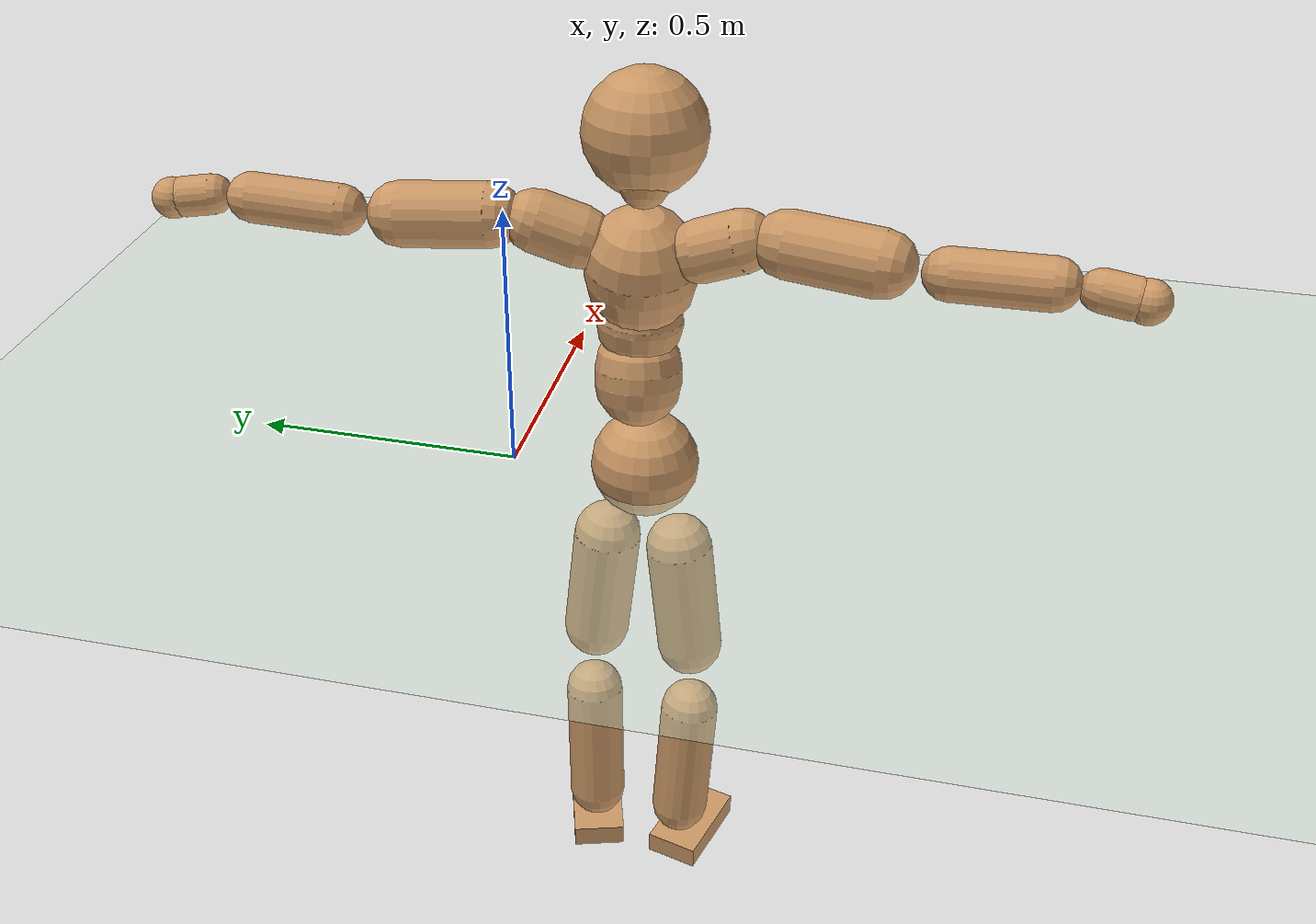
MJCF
<mujoco model="humanoid">
  <compiler coordinate="local"/>
  <default>
    <joint damping="0.0" armature="0.01" stiffness="0.0" limited="true"/>
    <geom conaffinity="1" condim="3" contype="7" margin="0.001" rgba="0.8 0.6 .4 1"/>
  </default>
  <asset>
    <texture type="skybox" builtin="gradient" rgb1=".4 .5 .6" rgb2="0 0 0" width="100" height="100"/>
    <texture builtin="flat" height="1278" mark="cross" markrgb="1 1 1" name="texgeom" random="0.01" rgb1="0.8 0.6 0.4" rgb2="0.8 0.6 0.4" type="cube" width="127"/>
    <texture builtin="checker" height="100" name="texplane" rgb1="0 0 0" rgb2="0.8 0.8 0.8" type="2d" width="100"/>
    <material name="MatPlane" reflectance="0.5" shininess="1" specular="1" texrepeat="60 60" texture="texplane"/>
    <material name="geom" texture="texgeom" texuniform="true"/>
  </asset>
  <worldbody>
    <light cutoff="100" diffuse="1 1 1" dir="-0 0 -1.3" directional="true" exponent="1" pos="0 0 1.3" specular=".1 .1 .1"/>
    <geom conaffinity="1" condim="3" name="floor" pos="0 0 0" rgba="0.8 0.9 0.8 1" size="100 100 .2" type="plane" material="MatPlane"/>
    <body name="Pelvis" pos="-0.0018 -0.2515 0.0301">
      <freejoint name="Pelvis"/>
      <geom type="sphere" contype="1" conaffinity="1" density="500" size="0.0991" pos="0.0000 0.0000 0.0000" name="Pelvis"/>
      <body name="L_Hip" pos="-0.0169 0.0598 -0.0839">
        <joint name="L_Hip_x" type="hinge" pos="0 0 0" axis="1 0 0" stiffness="800" damping="80" armature="0.02" range="-180.0000 180.0000"/>
        <joint name="L_Hip_y" type="hinge" pos="0 0 0" axis="0 1 0" stiffness="800" damping="80" armature="0.02" range="-180.0000 180.0000"/>
        <joint name="L_Hip_z" type="hinge" pos="0 0 0" axis="0 0 1" stiffness="800" damping="80" armature="0.02" range="-180.0000 180.0000"/>
        <geom type="capsule" contype="1" conaffinity="1" density="500" fromto="0.0016 0.0084 -0.0764 0.0062 0.0336 -0.3055" size="0.0626" name="L_Hip"/>
        <body name="L_Knee" pos="0.0078 0.042 -0.3819">
          <joint name="L_Knee_x" type="hinge" pos="0 0 0" axis="1 0 0" stiffness="800" damping="80" armature="0.02" range="-180.0000 180.0000"/>
          <joint name="L_Knee_y" type="hinge" pos="0 0 0" axis="0 1 0" stiffness="800" damping="80" armature="0.02" range="-180.0000 180.0000"/>
          <joint name="L_Knee_z" type="hinge" pos="0 0 0" axis="0 0 1" stiffness="800" damping="80" armature="0.02" range="-180.0000 180.0000"/>
          <geom type="capsule" contype="1" conaffinity="1" density="500" fromto="-0.0077 -0.0031 -0.0848 -0.0307 -0.0123 -0.3391" size="0.0561" name="L_Knee"/>
          <body name="L_Ankle" pos="-0.0384 -0.0154 -0.4239">
            <joint name="L_Ankle_x" type="hinge" pos="0 0 0" axis="1 0 0" stiffness="800" damping="80" armature="0.02" range="-180.0000 180.0000"/>
            <joint name="L_Ankle_y" type="hinge" pos="0 0 0" axis="0 1 0" stiffness="800" damping="80" armature="0.02" range="-180.0000 180.0000"/>
            <joint name="L_Ankle_z" type="hinge" pos="0 0 0" axis="0 0 1" stiffness="800" damping="80" armature="0.02" range="-180.0000 180.0000"/>
            <geom type="box" contype="1" conaffinity="1" density="500" pos="0.0619 0.0194 -0.0301" size="0.0897 0.0515 0.0224" quat="0.9885 0.0000 0.0000 0.1515" name="L_Ankle"/>
            <body name="L_Toe" pos="0.1237 0.0388 -0.0601">
              <joint name="L_Toe_x" type="hinge" pos="0 0 0" axis="1 0 0" stiffness="500" damping="50" armature="0.02" range="-180.0000 180.0000"/>
              <joint name="L_Toe_y" type="hinge" pos="0 0 0" axis="0 1 0" stiffness="500" damping="50" armature="0.02" range="-180.0000 180.0000"/>
              <joint name="L_Toe_z" type="hinge" pos="0 0 0" axis="0 0 1" stiffness="500" damping="50" armature="0.02" range="-180.0000 180.0000"/>
              <geom type="box" contype="1" conaffinity="1" density="500" pos="0.0000 0.0000 0.0290" size="0.0011 0.0025 0.0011" quat="0.9877 0.0000 0.0000 0.1564" name="L_Toe"/>
            </body>
          </body>
        </body>
      </body>
      <body name="R_Hip" pos="-0.0129 -0.0615 -0.0921">
        <joint name="R_Hip_x" type="hinge" pos="0 0 0" axis="1 0 0" stiffness="800" damping="80" armature="0.02" range="-180.0000 180.0000"/>
        <joint name="R_Hip_y" type="hinge" pos="0 0 0" axis="0 1 0" stiffness="800" damping="80" armature="0.02" range="-180.0000 180.0000"/>
        <joint name="R_Hip_z" type="hinge" pos="0 0 0" axis="0 0 1" stiffness="800" damping="80" armature="0.02" range="-180.0000 180.0000"/>
        <geom type="capsule" contype="1" conaffinity="1" density="500" fromto="-0.0009 -0.0084 -0.0760 -0.0035 -0.0337 -0.3041" size="0.0621" name="R_Hip"/>
        <body name="R_Knee" pos="-0.0044 -0.0422 -0.3801">
          <joint name="R_Knee_x" type="hinge" pos="0 0 0" axis="1 0 0" stiffness="800" damping="80" armature="0.02" range="-180.0000 180.0000"/>
          <joint name="R_Knee_y" type="hinge" pos="0 0 0" axis="0 1 0" stiffness="800" damping="80" armature="0.02" range="-180.0000 180.0000"/>
          <joint name="R_Knee_z" type="hinge" pos="0 0 0" axis="0 0 1" stiffness="800" damping="80" armature="0.02" range="-180.0000 180.0000"/>
          <geom type="capsule" contype="1" conaffinity="1" density="500" fromto="-0.0071 0.0039 -0.0835 -0.0282 0.0157 -0.3340" size="0.0562" name="R_Knee"/>
          <body name="R_Ankle" pos="-0.0353 0.0196 -0.4175">
            <joint name="R_Ankle_x" type="hinge" pos="0 0 0" axis="1 0 0" stiffness="800" damping="80" armature="0.02" range="-180.0000 180.0000"/>
            <joint name="R_Ankle_y" type="hinge" pos="0 0 0" axis="0 1 0" stiffness="800" damping="80" armature="0.02" range="-180.0000 180.0000"/>
            <joint name="R_Ankle_z" type="hinge" pos="0 0 0" axis="0 0 1" stiffness="800" damping="80" armature="0.02" range="-180.0000 180.0000"/>
            <geom type="box" contype="1" conaffinity="1" density="500" pos="0.0659 -0.0172 -0.0310" size="0.0914 0.0516 0.0223" quat="0.9918 0.0000 0.0000 -0.1276" name="R_Ankle"/>
            <body name="R_Toe" pos="0.1318 -0.0345 -0.062">
              <joint name="R_Toe_x" type="hinge" pos="0 0 0" axis="1 0 0" stiffness="500" damping="50" armature="0.02" range="-180.0000 180.0000"/>
              <joint name="R_Toe_y" type="hinge" pos="0 0 0" axis="0 1 0" stiffness="500" damping="50" armature="0.02" range="-180.0000 180.0000"/>
              <joint name="R_Toe_z" type="hinge" pos="0 0 0" axis="0 0 1" stiffness="500" damping="50" armature="0.02" range="-180.0000 180.0000"/>
              <geom type="box" contype="1" conaffinity="1" density="500" pos="0.0000 0.0000 0.0308" size="0.0011 0.0026 0.0011" quat="0.9929 0.0000 0.0000 -0.1188" name="R_Toe"/>
            </body>
          </body>
        </body>
      </body>
      <body name="Torso" pos="-0.0393 0.0043 0.1277">
        <joint name="Torso_x" type="hinge" pos="0 0 0" axis="1 0 0" stiffness="1000" damping="100" armature="0.02" range="-180.0000 180.0000"/>
        <joint name="Torso_y" type="hinge" pos="0 0 0" axis="0 1 0" stiffness="1000" damping="100" armature="0.02" range="-180.0000 180.0000"/>
        <joint name="Torso_z" type="hinge" pos="0 0 0" axis="0 0 1" stiffness="1000" damping="100" armature="0.02" range="-180.0000 180.0000"/>
        <geom type="capsule" contype="1" conaffinity="1" density="500" fromto="0.0167 0.0029 0.0852 0.0112 0.0019 0.0568" size="0.077283" name="Torso"/>
        <body name="Spine" pos="0.0279 0.0048 0.1421">
          <joint name="Spine_x" type="hinge" pos="0 0 0" axis="1 0 0" stiffness="1000" damping="100" armature="0.02" range="-180.0000 180.0000"/>
          <joint name="Spine_y" type="hinge" pos="0 0 0" axis="0 1 0" stiffness="1000" damping="100" armature="0.02" range="-180.0000 180.0000"/>
          <joint name="Spine_z" type="hinge" pos="0 0 0" axis="0 0 1" stiffness="1000" damping="100" armature="0.02" range="-180.0000 180.0000"/>
          <geom type="capsule" contype="1" conaffinity="1" density="500" fromto="0.0022 -0.0015 0.0349 0.0014 -0.0010 0.0232" size="0.075981" name="Spine"/>
          <body name="Chest" pos="0.0036 -0.0025 0.0581">
            <joint name="Chest_x" type="hinge" pos="0 0 0" axis="1 0 0" stiffness="1000" damping="100" armature="0.02" range="-180.0000 180.0000"/>
            <joint name="Chest_y" type="hinge" pos="0 0 0" axis="0 1 0" stiffness="1000" damping="100" armature="0.02" range="-180.0000 180.0000"/>
            <joint name="Chest_z" type="hinge" pos="0 0 0" axis="0 0 1" stiffness="1000" damping="100" armature="0.02" range="-180.0000 180.0000"/>
            <geom type="capsule" contype="1" conaffinity="1" density="500" fromto="-0.0170 -0.0051 0.0904 -0.0114 -0.0034 0.0603" size="0.096999" name="Chest"/>
            <body name="Neck" pos="-0.0394 -0.0137 0.2189">
              <joint name="Neck_x" type="hinge" pos="0 0 0" axis="1 0 0" stiffness="500" damping="50" armature="0.02" range="-180.0000 180.0000"/>
              <joint name="Neck_y" type="hinge" pos="0 0 0" axis="0 1 0" stiffness="500" damping="50" armature="0.02" range="-180.0000 180.0000"/>
              <joint name="Neck_z" type="hinge" pos="0 0 0" axis="0 0 1" stiffness="500" damping="50" armature="0.02" range="-180.0000 180.0000"/>
              <geom type="capsule" contype="1" conaffinity="1" density="500" fromto="0.0099 0.0019 0.0178 0.0395 0.0078 0.0711" size="0.043152" name="Neck"/>
              <body name="Head" pos="0.0494 0.0097 0.0889">
                <joint name="Head_x" type="hinge" pos="0 0 0" axis="1 0 0" stiffness="500" damping="50" armature="0.02" range="-180.0000 180.0000"/>
                <joint name="Head_y" type="hinge" pos="0 0 0" axis="0 1 0" stiffness="500" damping="50" armature="0.02" range="-180.0000 180.0000"/>
                <joint name="Head_z" type="hinge" pos="0 0 0" axis="0 0 1" stiffness="500" damping="50" armature="0.02" range="-180.0000 180.0000"/>
                <geom type="sphere" contype="1" conaffinity="1" density="500" size="0.1060" pos="0.0000 0.0000 0.0000" name="Head"/>
              </body>
            </body>
            <body name="L_Thorax" pos="-0.0204 0.0729 0.1173">
              <joint name="L_Thorax_x" type="hinge" pos="0 0 0" axis="1 0 0" stiffness="500" damping="50" armature="0.02" range="-180.0000 180.0000"/>
              <joint name="L_Thorax_y" type="hinge" pos="0 0 0" axis="0 1 0" stiffness="500" damping="50" armature="0.02" range="-180.0000 180.0000"/>
              <joint name="L_Thorax_z" type="hinge" pos="0 0 0" axis="0 0 1" stiffness="500" damping="50" armature="0.02" range="-180.0000 180.0000"/>
              <geom type="capsule" contype="1" conaffinity="1" density="500" fromto="-0.0039 0.0251 0.0090 -0.0157 0.1003 0.0360" size="0.0542" name="L_Thorax"/>
              <body name="L_Shoulder" pos="-0.0196 0.1254 0.0449">
                <joint name="L_Shoulder_x" type="hinge" pos="0 0 0" axis="1 0 0" stiffness="500" damping="50" armature="0.02" range="-720.0000 720.0000"/>
                <joint name="L_Shoulder_y" type="hinge" pos="0 0 0" axis="0 1 0" stiffness="500" damping="50" armature="0.02" range="-720.0000 720.0000"/>
                <joint name="L_Shoulder_z" type="hinge" pos="0 0 0" axis="0 0 1" stiffness="500" damping="50" armature="0.02" range="-720.0000 720.0000"/>
                <geom type="capsule" contype="1" conaffinity="1" density="500" fromto="-0.0046 0.0509 -0.0029 -0.0183 0.2035 -0.0118" size="0.0565" name="L_Shoulder"/>
                <body name="L_Elbow" pos="-0.0229 0.2543 -0.0147">
                  <joint name="L_Elbow_x" type="hinge" pos="0 0 0" axis="1 0 0" stiffness="500" damping="50" armature="0.02" range="-720.0000 720.0000"/>
                  <joint name="L_Elbow_y" type="hinge" pos="0 0 0" axis="0 1 0" stiffness="500" damping="50" armature="0.02" range="-720.0000 720.0000"/>
                  <joint name="L_Elbow_z" type="hinge" pos="0 0 0" axis="0 0 1" stiffness="500" damping="50" armature="0.02" range="-720.0000 720.0000"/>
                  <geom type="capsule" contype="1" conaffinity="1" density="500" fromto="-0.0014 0.0530 0.0025 -0.0055 0.2121 0.0099" size="0.0437" name="L_Elbow"/>
                  <body name="L_Wrist" pos="-0.0069 0.2651 0.0124">
                    <joint name="L_Wrist_x" type="hinge" pos="0 0 0" axis="1 0 0" stiffness="300" damping="30" armature="0.02" range="-180.0000 180.0000"/>
                    <joint name="L_Wrist_y" type="hinge" pos="0 0 0" axis="0 1 0" stiffness="300" damping="30" armature="0.02" range="-180.0000 180.0000"/>
                    <joint name="L_Wrist_z" type="hinge" pos="0 0 0" axis="0 0 1" stiffness="300" damping="30" armature="0.02" range="-180.0000 180.0000"/>
                    <geom type="capsule" contype="1" conaffinity="1" density="500" fromto="-0.0031 0.0175 -0.0021 -0.0125 0.0699 -0.0085" size="0.0346" name="L_Wrist"/>
                    <body name="L_Hand" pos="-0.0156 0.0874 -0.0107">
                      <joint name="L_Hand_x" type="hinge" pos="0 0 0" axis="1 0 0" stiffness="300" damping="30" armature="0.02" range="-180.0000 180.0000"/>
                      <joint name="L_Hand_y" type="hinge" pos="0 0 0" axis="0 1 0" stiffness="300" damping="30" armature="0.02" range="-180.0000 180.0000"/>
                      <joint name="L_Hand_z" type="hinge" pos="0 0 0" axis="0 0 1" stiffness="300" damping="30" armature="0.02" range="-180.0000 180.0000"/>
                      <geom type="sphere" contype="1" conaffinity="1" density="500" size="0.0359" pos="0.0000 0.0000 0.0000" name="L_Hand"/>
                    </body>
                  </body>
                </body>
              </body>
            </body>
            <body name="R_Thorax" pos="-0.0253 -0.0845 0.1158">
              <joint name="R_Thorax_x" type="hinge" pos="0 0 0" axis="1 0 0" stiffness="500" damping="50" armature="0.02" range="-180.0000 180.0000"/>
              <joint name="R_Thorax_y" type="hinge" pos="0 0 0" axis="0 1 0" stiffness="500" damping="50" armature="0.02" range="-180.0000 180.0000"/>
              <joint name="R_Thorax_z" type="hinge" pos="0 0 0" axis="0 0 1" stiffness="500" damping="50" armature="0.02" range="-180.0000 180.0000"/>
              <geom type="capsule" contype="1" conaffinity="1" density="500" fromto="-0.0018 -0.0231 0.0094 -0.0071 -0.0926 0.0375" size="0.0543" name="R_Thorax"/>
              <body name="R_Shoulder" pos="-0.0089 -0.1157 0.0468">
                <joint name="R_Shoulder_x" type="hinge" pos="0 0 0" axis="1 0 0" stiffness="500" damping="50" armature="0.02" range="-720.0000 720.0000"/>
                <joint name="R_Shoulder_y" type="hinge" pos="0 0 0" axis="0 1 0" stiffness="500" damping="50" armature="0.02" range="-720.0000 720.0000"/>
                <joint name="R_Shoulder_z" type="hinge" pos="0 0 0" axis="0 0 1" stiffness="500" damping="50" armature="0.02" range="-720.0000 720.0000"/>
                <geom type="capsule" contype="1" conaffinity="1" density="500" fromto="-0.0063 -0.0520 -0.0026 -0.0252 -0.2078 -0.0104" size="0.0573" name="R_Shoulder"/>
                <body name="R_Elbow" pos="-0.0315 -0.2598 -0.013">
                  <joint name="R_Elbow_x" type="hinge" pos="0 0 0" axis="1 0 0" stiffness="500" damping="50" armature="0.02" range="-720.0000 720.0000"/>
                  <joint name="R_Elbow_y" type="hinge" pos="0 0 0" axis="0 1 0" stiffness="500" damping="50" armature="0.02" range="-720.0000 720.0000"/>
                  <joint name="R_Elbow_z" type="hinge" pos="0 0 0" axis="0 0 1" stiffness="500" damping="50" armature="0.02" range="-720.0000 720.0000"/>
                  <geom type="capsule" contype="1" conaffinity="1" density="500" fromto="-0.0012 -0.0536 0.0011 -0.0047 -0.2144 0.0046" size="0.0444" name="R_Elbow"/>
                  <body name="R_Wrist" pos="-0.0059 -0.268 0.0057">
                    <joint name="R_Wrist_x" type="hinge" pos="0 0 0" axis="1 0 0" stiffness="300" damping="30" armature="0.02" range="-180.0000 180.0000"/>
                    <joint name="R_Wrist_y" type="hinge" pos="0 0 0" axis="0 1 0" stiffness="300" damping="30" armature="0.02" range="-180.0000 180.0000"/>
                    <joint name="R_Wrist_z" type="hinge" pos="0 0 0" axis="0 0 1" stiffness="300" damping="30" armature="0.02" range="-180.0000 180.0000"/>
                    <geom type="capsule" contype="1" conaffinity="1" density="500" fromto="-0.0020 -0.0179 -0.0017 -0.0080 -0.0718 -0.0070" size="0.0353" name="R_Wrist"/>
                    <body name="R_Hand" pos="-0.01 -0.0897 -0.0087">
                      <joint name="R_Hand_x" type="hinge" pos="0 0 0" axis="1 0 0" stiffness="300" damping="30" armature="0.02" range="-180.0000 180.0000"/>
                      <joint name="R_Hand_y" type="hinge" pos="0 0 0" axis="0 1 0" stiffness="300" damping="30" armature="0.02" range="-180.0000 180.0000"/>
                      <joint name="R_Hand_z" type="hinge" pos="0 0 0" axis="0 0 1" stiffness="300" damping="30" armature="0.02" range="-180.0000 180.0000"/>
                      <geom type="sphere" contype="1" conaffinity="1" density="500" size="0.0365" pos="0.0000 0.0000 0.0000" name="R_Hand"/>
                    </body>
                  </body>
                </body>
              </body>
            </body>
          </body>
        </body>
      </body>
    </body>
  </worldbody>
  <actuator>
    <motor name="L_Hip_x" joint="L_Hip_x" gear="500"/>
    <motor name="L_Hip_y" joint="L_Hip_y" gear="500"/>
    <motor name="L_Hip_z" joint="L_Hip_z" gear="500"/>
    <motor name="L_Knee_x" joint="L_Knee_x" gear="500"/>
    <motor name="L_Knee_y" joint="L_Knee_y" gear="500"/>
    <motor name="L_Knee_z" joint="L_Knee_z" gear="500"/>
    <motor name="L_Ankle_x" joint="L_Ankle_x" gear="500"/>
    <motor name="L_Ankle_y" joint="L_Ankle_y" gear="500"/>
    <motor name="L_Ankle_z" joint="L_Ankle_z" gear="500"/>
    <motor name="L_Toe_x" joint="L_Toe_x" gear="500"/>
    <motor name="L_Toe_y" joint="L_Toe_y" gear="500"/>
    <motor name="L_Toe_z" joint="L_Toe_z" gear="500"/>
    <motor name="R_Hip_x" joint="R_Hip_x" gear="500"/>
    <motor name="R_Hip_y" joint="R_Hip_y" gear="500"/>
    <motor name="R_Hip_z" joint="R_Hip_z" gear="500"/>
    <motor name="R_Knee_x" joint="R_Knee_x" gear="500"/>
    <motor name="R_Knee_y" joint="R_Knee_y" gear="500"/>
    <motor name="R_Knee_z" joint="R_Knee_z" gear="500"/>
    <motor name="R_Ankle_x" joint="R_Ankle_x" gear="500"/>
    <motor name="R_Ankle_y" joint="R_Ankle_y" gear="500"/>
    <motor name="R_Ankle_z" joint="R_Ankle_z" gear="500"/>
    <motor name="R_Toe_x" joint="R_Toe_x" gear="500"/>
    <motor name="R_Toe_y" joint="R_Toe_y" gear="500"/>
    <motor name="R_Toe_z" joint="R_Toe_z" gear="500"/>
    <motor name="Torso_x" joint="Torso_x" gear="500"/>
    <motor name="Torso_y" joint="Torso_y" gear="500"/>
    <motor name="Torso_z" joint="Torso_z" gear="500"/>
    <motor name="Spine_x" joint="Spine_x" gear="500"/>
    <motor name="Spine_y" joint="Spine_y" gear="500"/>
    <motor name="Spine_z" joint="Spine_z" gear="500"/>
    <motor name="Chest_x" joint="Chest_x" gear="500"/>
    <motor name="Chest_y" joint="Chest_y" gear="500"/>
    <motor name="Chest_z" joint="Chest_z" gear="500"/>
    <motor name="Neck_x" joint="Neck_x" gear="500"/>
    <motor name="Neck_y" joint="Neck_y" gear="500"/>
    <motor name="Neck_z" joint="Neck_z" gear="500"/>
    <motor name="Head_x" joint="Head_x" gear="500"/>
    <motor name="Head_y" joint="Head_y" gear="500"/>
    <motor name="Head_z" joint="Head_z" gear="500"/>
    <motor name="L_Thorax_x" joint="L_Thorax_x" gear="500"/>
    <motor name="L_Thorax_y" joint="L_Thorax_y" gear="500"/>
    <motor name="L_Thorax_z" joint="L_Thorax_z" gear="500"/>
    <motor name="L_Shoulder_x" joint="L_Shoulder_x" gear="500"/>
    <motor name="L_Shoulder_y" joint="L_Shoulder_y" gear="500"/>
    <motor name="L_Shoulder_z" joint="L_Shoulder_z" gear="500"/>
    <motor name="L_Elbow_x" joint="L_Elbow_x" gear="500"/>
    <motor name="L_Elbow_y" joint="L_Elbow_y" gear="500"/>
    <motor name="L_Elbow_z" joint="L_Elbow_z" gear="500"/>
    <motor name="L_Wrist_x" joint="L_Wrist_x" gear="500"/>
    <motor name="L_Wrist_y" joint="L_Wrist_y" gear="500"/>
    <motor name="L_Wrist_z" joint="L_Wrist_z" gear="500"/>
    <motor name="L_Hand_x" joint="L_Hand_x" gear="500"/>
    <motor name="L_Hand_y" joint="L_Hand_y" gear="500"/>
    <motor name="L_Hand_z" joint="L_Hand_z" gear="500"/>
    <motor name="R_Thorax_x" joint="R_Thorax_x" gear="500"/>
    <motor name="R_Thorax_y" joint="R_Thorax_y" gear="500"/>
    <motor name="R_Thorax_z" joint="R_Thorax_z" gear="500"/>
    <motor name="R_Shoulder_x" joint="R_Shoulder_x" gear="500"/>
    <motor name="R_Shoulder_y" joint="R_Shoulder_y" gear="500"/>
    <motor name="R_Shoulder_z" joint="R_Shoulder_z" gear="500"/>
    <motor name="R_Elbow_x" joint="R_Elbow_x" gear="500"/>
    <motor name="R_Elbow_y" joint="R_Elbow_y" gear="500"/>
    <motor name="R_Elbow_z" joint="R_Elbow_z" gear="500"/>
    <motor name="R_Wrist_x" joint="R_Wrist_x" gear="500"/>
    <motor name="R_Wrist_y" joint="R_Wrist_y" gear="500"/>
    <motor name="R_Wrist_z" joint="R_Wrist_z" gear="500"/>
    <motor name="R_Hand_x" joint="R_Hand_x" gear="500"/>
    <motor name="R_Hand_y" joint="R_Hand_y" gear="500"/>
    <motor name="R_Hand_z" joint="R_Hand_z" gear="500"/>
  </actuator>
  <contact>
    <exclude body1="Torso" body2="Chest"/>
    <exclude body1="Head" body2="Chest"/>
    <exclude body1="R_Knee" body2="R_Toe"/>
    <exclude body1="R_Knee" body2="L_Ankle"/>
    <exclude body1="R_Knee" body2="L_Toe"/>
    <exclude body1="L_Knee" body2="L_Toe"/>
    <exclude body1="L_Knee" body2="R_Ankle"/>
    <exclude body1="L_Knee" body2="R_Toe"/>
    <exclude body1="L_Shoulder" body2="Chest"/>
    <exclude body1="R_Shoulder" body2="Chest"/>
  </contact>
  <sensor/>
  <size njmax="700" nconmax="700"/>
</mujoco>
